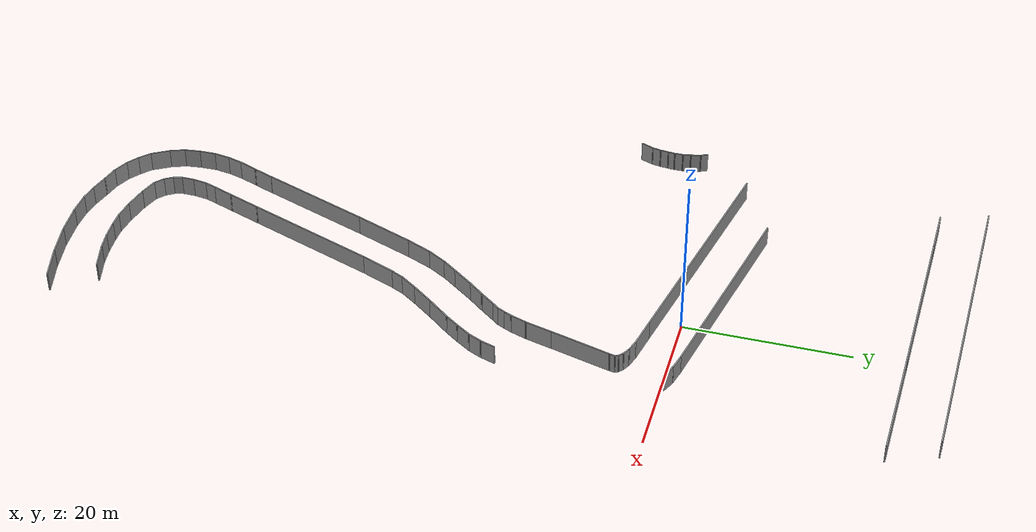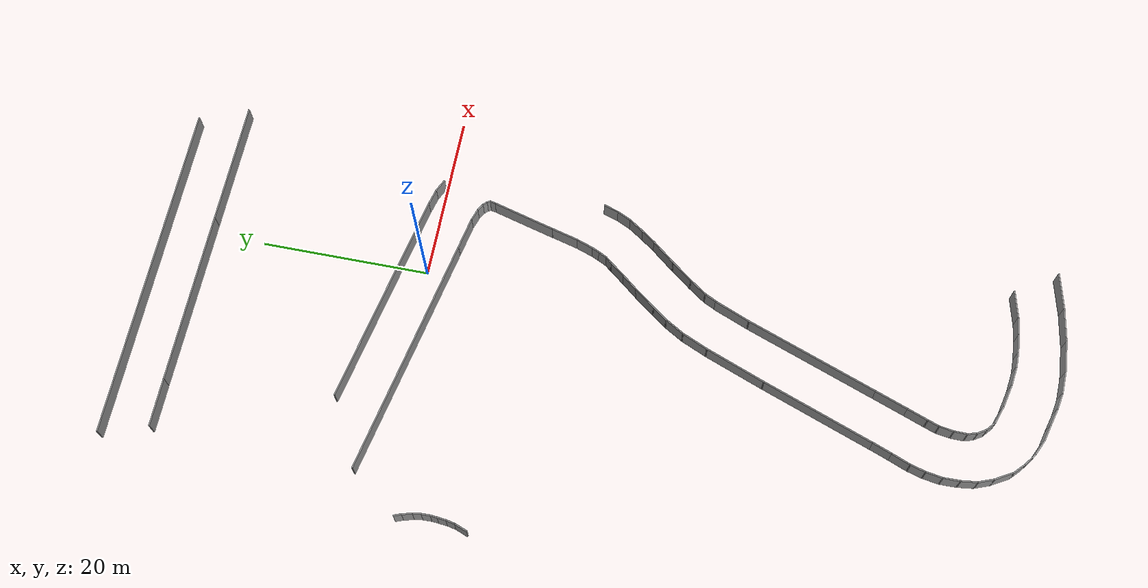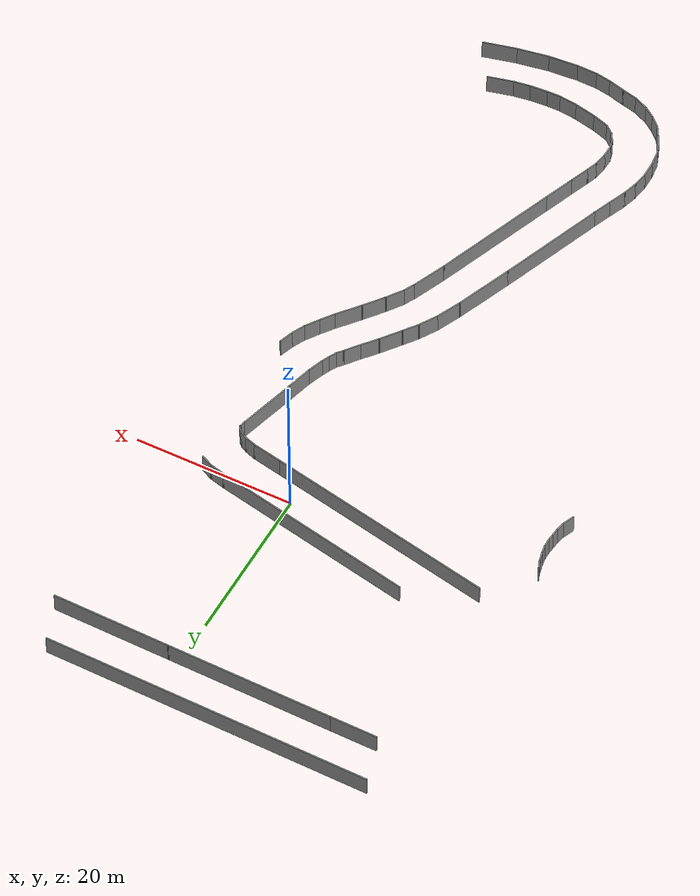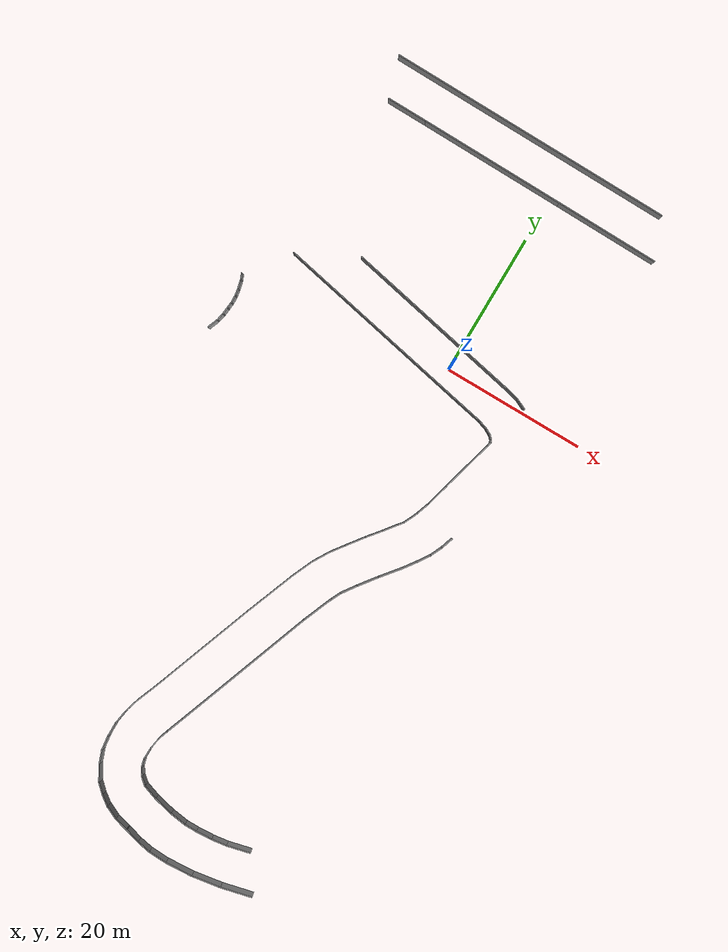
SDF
<sdf version="1.6">
 <model name="pista_l">
  <pose>-4.26084 -21.2973 0 0 -0 0</pose>
  <link name="Wall_146">
   <collision name="Wall_146_Collision">
    <geometry><box><size>3.40806 0.15 2.5</size></box></geometry>
    <pose>0 0 1.25 0 -0 0</pose>
   </collision>
   <visual name="Wall_146_Visual">
    <pose>0 0 1.25 0 -0 0</pose>
    <geometry><box><size>3.40806 0.15 2.5</size></box></geometry>
    <material>
     <script><uri>file://media/materials/scripts/gazebo.material</uri><name>Gazebo/Grey</name></script>
     <ambient>1 1 1 1</ambient>
    </material>
    <meta><layer>0</layer></meta>
   </visual>
   <pose>12.7281 -47.3352 0 0 0 -2.90255</pose>
  </link>
  <link name="Wall_147">
   <collision name="Wall_147_Collision">
    <geometry><box><size>2.27169 0.15 2.5</size></box></geometry>
    <pose>0 0 1.25 0 -0 0</pose>
   </collision>
   <visual name="Wall_147_Visual">
    <pose>0 0 1.25 0 -0 0</pose>
    <geometry><box><size>2.27169 0.15 2.5</size></box></geometry>
    <material>
     <script><uri>file://media/materials/scripts/gazebo.material</uri><name>Gazebo/Grey</name></script>
     <ambient>1 1 1 1</ambient>
    </material>
    <meta><layer>0</layer></meta>
   </visual>
   <pose>10.0947 -47.8672 0 0 0 -3.00324</pose>
  </link>
  <link name="Wall_148">
   <collision name="Wall_148_Collision">
    <geometry><box><size>2.41493 0.15 2.5</size></box></geometry>
    <pose>0 0 1.25 0 -0 0</pose>
   </collision>
   <visual name="Wall_148_Visual">
    <pose>0 0 1.25 0 -0 0</pose>
    <geometry><box><size>2.41493 0.15 2.5</size></box></geometry>
    <material>
     <script><uri>file://media/materials/scripts/gazebo.material</uri><name>Gazebo/Grey</name></script>
     <ambient>1 1 1 1</ambient>
    </material>
    <meta><layer>0</layer></meta>
   </visual>
   <pose>7.91347 -48.08 0 0 0 -3.08284</pose>
  </link>
  <link name="Wall_149">
   <collision name="Wall_149_Collision">
    <geometry><box><size>1.90561 0.15 2.5</size></box></geometry>
    <pose>0 0 1.25 0 -0 0</pose>
   </collision>
   <visual name="Wall_149_Visual">
    <pose>0 0 1.25 0 -0 0</pose>
    <geometry><box><size>1.90561 0.15 2.5</size></box></geometry>
    <material>
     <script><uri>file://media/materials/scripts/gazebo.material</uri><name>Gazebo/Grey</name></script>
     <ambient>1 1 1 1</ambient>
    </material>
    <meta><layer>0</layer></meta>
   </visual>
   <pose>5.90515 -48.1465 0 0 -0 3.14159</pose>
  </link>
  <link name="Wall_150">
   <collision name="Wall_150_Collision">
    <geometry><box><size>2.48613 0.15 2.5</size></box></geometry>
    <pose>0 0 1.25 0 -0 0</pose>
   </collision>
   <visual name="Wall_150_Visual">
    <pose>0 0 1.25 0 -0 0</pose>
    <geometry><box><size>2.48613 0.15 2.5</size></box></geometry>
    <material>
     <script><uri>file://media/materials/scripts/gazebo.material</uri><name>Gazebo/Grey</name></script>
     <ambient>1 1 1 1</ambient>
    </material>
    <meta><layer>0</layer></meta>
   </visual>
   <pose>3.87024 -47.9869 0 0 -0 3.00453</pose>
  </link>
  <link name="Wall_151">
   <collision name="Wall_151_Collision">
    <geometry><box><size>2.96321 0.15 2.5</size></box></geometry>
    <pose>0 0 1.25 0 -0 0</pose>
   </collision>
   <visual name="Wall_151_Visual">
    <pose>0 0 1.25 0 -0 0</pose>
    <geometry><box><size>2.96321 0.15 2.5</size></box></geometry>
    <material>
     <script><uri>file://media/materials/scripts/gazebo.material</uri><name>Gazebo/Grey</name></script>
     <ambient>1 1 1 1</ambient>
    </material>
    <meta><layer>0</layer></meta>
   </visual>
   <pose>1.34322 -47.5081 0 0 -0 2.91267</pose>
  </link>
  <link name="Wall_152">
   <collision name="Wall_152_Collision">
    <geometry><box><size>2.3456 0.15 2.5</size></box></geometry>
    <pose>0 0 1.25 0 -0 0</pose>
   </collision>
   <visual name="Wall_152_Visual">
    <pose>0 0 1.25 0 -0 0</pose>
    <geometry><box><size>2.3456 0.15 2.5</size></box></geometry>
    <material>
     <script><uri>file://media/materials/scripts/gazebo.material</uri><name>Gazebo/Grey</name></script>
     <ambient>1 1 1 1</ambient>
    </material>
    <meta><layer>0</layer></meta>
   </visual>
   <pose>-1.0641 -46.8297 0 0 -0 2.80835</pose>
  </link>
  <link name="Wall_153">
   <collision name="Wall_153_Collision">
    <geometry><box><size>1.48876 0.15 2.5</size></box></geometry>
    <pose>0 0 1.25 0 -0 0</pose>
   </collision>
   <visual name="Wall_153_Visual">
    <pose>0 0 1.25 0 -0 0</pose>
    <geometry><box><size>1.48876 0.15 2.5</size></box></geometry>
    <material>
     <script><uri>file://media/materials/scripts/gazebo.material</uri><name>Gazebo/Grey</name></script>
     <ambient>1 1 1 1</ambient>
    </material>
    <meta><layer>0</layer></meta>
   </visual>
   <pose>-2.60691 -46.0317 0 0 -0 2.4265</pose>
  </link>
  <link name="Wall_154">
   <collision name="Wall_154_Collision">
    <geometry><box><size>1.30886 0.15 2.5</size></box></geometry>
    <pose>0 0 1.25 0 -0 0</pose>
   </collision>
   <visual name="Wall_154_Visual">
    <pose>0 0 1.25 0 -0 0</pose>
    <geometry><box><size>1.30886 0.15 2.5</size></box></geometry>
    <material>
     <script><uri>file://media/materials/scripts/gazebo.material</uri><name>Gazebo/Grey</name></script>
     <ambient>1 1 1 1</ambient>
    </material>
    <meta><layer>0</layer></meta>
   </visual>
   <pose>-3.41822 -45.1007 0 0 -0 2.12696</pose>
  </link>
  <link name="Wall_155">
   <collision name="Wall_155_Collision">
    <geometry><box><size>1.27918 0.15 2.5</size></box></geometry>
    <pose>0 0 1.25 0 -0 0</pose>
   </collision>
   <visual name="Wall_155_Visual">
    <pose>0 0 1.25 0 -0 0</pose>
    <geometry><box><size>1.27918 0.15 2.5</size></box></geometry>
    <material>
     <script><uri>file://media/materials/scripts/gazebo.material</uri><name>Gazebo/Grey</name></script>
     <ambient>1 1 1 1</ambient>
    </material>
    <meta><layer>0</layer></meta>
   </visual>
   <pose>-3.87042 -44.0633 0 0 -0 1.83292</pose>
  </link>
  <link name="Wall_156">
   <collision name="Wall_156_Collision">
    <geometry><box><size>1.69304 0.15 2.5</size></box></geometry>
    <pose>0 0 1.25 0 -0 0</pose>
   </collision>
   <visual name="Wall_156_Visual">
    <pose>0 0 1.25 0 -0 0</pose>
    <geometry><box><size>1.69304 0.15 2.5</size></box></geometry>
    <material>
     <script><uri>file://media/materials/scripts/gazebo.material</uri><name>Gazebo/Grey</name></script>
     <ambient>1 1 1 1</ambient>
    </material>
    <meta><layer>0</layer></meta>
   </visual>
   <pose>-4.00342 -42.7466 0 0 -0 1.55356</pose>
  </link>
  <link name="Wall_157">
   <collision name="Wall_157_Collision">
    <geometry><box><size>1.87307 0.15 2.5</size></box></geometry>
    <pose>0 0 1.25 0 -0 0</pose>
   </collision>
   <visual name="Wall_157_Visual">
    <pose>0 0 1.25 0 -0 0</pose>
    <geometry><box><size>1.87307 0.15 2.5</size></box></geometry>
    <material>
     <script><uri>file://media/materials/scripts/gazebo.material</uri><name>Gazebo/Grey</name></script>
     <ambient>1 1 1 1</ambient>
    </material>
    <meta><layer>0</layer></meta>
   </visual>
   <pose>-3.85712 -41.124 0 0 -0 1.4158</pose>
  </link>
  <link name="Wall_158">
   <collision name="Wall_158_Collision">
    <geometry><box><size>1.58863 0.15 2.5</size></box></geometry>
    <pose>0 0 1.25 0 -0 0</pose>
   </collision>
   <visual name="Wall_158_Visual">
    <pose>0 0 1.25 0 -0 0</pose>
    <geometry><box><size>1.58863 0.15 2.5</size></box></geometry>
    <material>
     <script><uri>file://media/materials/scripts/gazebo.material</uri><name>Gazebo/Grey</name></script>
     <ambient>1 1 1 1</ambient>
    </material>
    <meta><layer>0</layer></meta>
   </visual>
   <pose>-3.48472 -39.5945 0 0 -0 1.2315</pose>
  </link>
  <link name="Wall_159">
   <collision name="Wall_159_Collision">
    <geometry><box><size>2.75899 0.15 2.5</size></box></geometry>
    <pose>0 0 1.25 0 -0 0</pose>
   </collision>
   <visual name="Wall_159_Visual">
    <pose>0 0 1.25 0 -0 0</pose>
    <geometry><box><size>2.75899 0.15 2.5</size></box></geometry>
    <material>
     <script><uri>file://media/materials/scripts/gazebo.material</uri><name>Gazebo/Grey</name></script>
     <ambient>1 1 1 1</ambient>
    </material>
    <meta><layer>0</layer></meta>
   </visual>
   <pose>-2.79311 -37.6926 0 0 -0 1.2168</pose>
  </link>
  <link name="Wall_160">
   <collision name="Wall_160_Collision">
    <geometry><box><size>4.25661 0.15 2.5</size></box></geometry>
    <pose>0 0 1.25 0 -0 0</pose>
   </collision>
   <visual name="Wall_160_Visual">
    <pose>0 0 1.25 0 -0 0</pose>
    <geometry><box><size>4.25661 0.15 2.5</size></box></geometry>
    <material>
     <script><uri>file://media/materials/scripts/gazebo.material</uri><name>Gazebo/Grey</name></script>
     <ambient>1 1 1 1</ambient>
    </material>
    <meta><layer>0</layer></meta>
   </visual>
   <pose>-1.636 -34.5405 0 0 -0 1.22036</pose>
  </link>
  <link name="Wall_175">
   <collision name="Wall_175_Collision">
    <geometry><box><size>4.60821 0.15 2.5</size></box></geometry>
    <pose>0 0 1.25 0 -0 0</pose>
   </collision>
   <visual name="Wall_175_Visual">
    <pose>0 0 1.25 0 -0 0</pose>
    <geometry><box><size>4.60821 0.15 2.5</size></box></geometry>
    <material>
     <script><uri>file://media/materials/scripts/gazebo.material</uri><name>Gazebo/Grey</name></script>
     <ambient>1 1 1 1</ambient>
    </material>
    <meta><layer>0</layer></meta>
   </visual>
   <pose>15.3083 -52.3626 0 0 0 -2.90674</pose>
  </link>
  <link name="Wall_177">
   <collision name="Wall_177_Collision">
    <geometry><box><size>4.13826 0.15 2.5</size></box></geometry>
    <pose>0 0 1.25 0 -0 0</pose>
   </collision>
   <visual name="Wall_177_Visual">
    <pose>0 0 1.25 0 -0 0</pose>
    <geometry><box><size>4.13826 0.15 2.5</size></box></geometry>
    <material>
     <script><uri>file://media/materials/scripts/gazebo.material</uri><name>Gazebo/Grey</name></script>
     <ambient>1 1 1 1</ambient>
    </material>
    <meta><layer>0</layer></meta>
   </visual>
   <pose>11.2252 -53.1739 0 0 0 -2.98083</pose>
  </link>
  <link name="Wall_178">
   <collision name="Wall_178_Collision">
    <geometry><box><size>3.96136 0.15 2.5</size></box></geometry>
    <pose>0 0 1.25 0 -0 0</pose>
   </collision>
   <visual name="Wall_178_Visual">
    <pose>0 0 1.25 0 -0 0</pose>
    <geometry><box><size>3.96136 0.15 2.5</size></box></geometry>
    <material>
     <script><uri>file://media/materials/scripts/gazebo.material</uri><name>Gazebo/Grey</name></script>
     <ambient>1 1 1 1</ambient>
    </material>
    <meta><layer>0</layer></meta>
   </visual>
   <pose>7.35487 -53.6128 0 0 0 -3.07874</pose>
  </link>
  <link name="Wall_179">
   <collision name="Wall_179_Collision">
    <geometry><box><size>2.75804 0.15 2.5</size></box></geometry>
    <pose>0 0 1.25 0 -0 0</pose>
   </collision>
   <visual name="Wall_179_Visual">
    <pose>0 0 1.25 0 -0 0</pose>
    <geometry><box><size>2.75804 0.15 2.5</size></box></geometry>
    <material>
     <script><uri>file://media/materials/scripts/gazebo.material</uri><name>Gazebo/Grey</name></script>
     <ambient>1 1 1 1</ambient>
    </material>
    <meta><layer>0</layer></meta>
   </visual>
   <pose>4.14954 -53.6793 0 0 -0 3.1008</pose>
  </link>
  <link name="Wall_180">
   <collision name="Wall_180_Collision">
    <geometry><box><size>2.15333 0.15 2.5</size></box></geometry>
    <pose>0 0 1.25 0 -0 0</pose>
   </collision>
   <visual name="Wall_180_Visual">
    <pose>0 0 1.25 0 -0 0</pose>
    <geometry><box><size>2.15333 0.15 2.5</size></box></geometry>
    <material>
     <script><uri>file://media/materials/scripts/gazebo.material</uri><name>Gazebo/Grey</name></script>
     <ambient>1 1 1 1</ambient>
    </material>
    <meta><layer>0</layer></meta>
   </visual>
   <pose>1.86193 -53.4399 0 0 -0 2.95461</pose>
  </link>
  <link name="Wall_181">
   <collision name="Wall_181_Collision">
    <geometry><box><size>2.33138 0.15 2.5</size></box></geometry>
    <pose>0 0 1.25 0 -0 0</pose>
   </collision>
   <visual name="Wall_181_Visual">
    <pose>0 0 1.25 0 -0 0</pose>
    <geometry><box><size>2.33138 0.15 2.5</size></box></geometry>
    <material>
     <script><uri>file://media/materials/scripts/gazebo.material</uri><name>Gazebo/Grey</name></script>
     <ambient>1 1 1 1</ambient>
    </material>
    <meta><layer>0</layer></meta>
   </visual>
   <pose>-0.17299 -52.9611 0 0 -0 2.86999</pose>
  </link>
  <link name="Wall_182">
   <collision name="Wall_182_Collision">
    <geometry><box><size>2.15651 0.15 2.5</size></box></geometry>
    <pose>0 0 1.25 0 -0 0</pose>
   </collision>
   <visual name="Wall_182_Visual">
    <pose>0 0 1.25 0 -0 0</pose>
    <geometry><box><size>2.15651 0.15 2.5</size></box></geometry>
    <material>
     <script><uri>file://media/materials/scripts/gazebo.material</uri><name>Gazebo/Grey</name></script>
     <ambient>1 1 1 1</ambient>
    </material>
    <meta><layer>0</layer></meta>
   </visual>
   <pose>-2.19461 -52.4158 0 0 -0 2.88697</pose>
  </link>
  <link name="Wall_183">
   <collision name="Wall_183_Collision">
    <geometry><box><size>2.14909 0.15 2.5</size></box></geometry>
    <pose>0 0 1.25 0 -0 0</pose>
   </collision>
   <visual name="Wall_183_Visual">
    <pose>0 0 1.25 0 -0 0</pose>
    <geometry><box><size>2.14909 0.15 2.5</size></box></geometry>
    <material>
     <script><uri>file://media/materials/scripts/gazebo.material</uri><name>Gazebo/Grey</name></script>
     <ambient>1 1 1 1</ambient>
    </material>
    <meta><layer>0</layer></meta>
   </visual>
   <pose>-4.06992 -51.7375 0 0 -0 2.70175</pose>
  </link>
  <link name="Wall_184">
   <collision name="Wall_184_Collision">
    <geometry><box><size>1.80457 0.15 2.5</size></box></geometry>
    <pose>0 0 1.25 0 -0 0</pose>
   </collision>
   <visual name="Wall_184_Visual">
    <pose>0 0 1.25 0 -0 0</pose>
    <geometry><box><size>1.80457 0.15 2.5</size></box></geometry>
    <material>
     <script><uri>file://media/materials/scripts/gazebo.material</uri><name>Gazebo/Grey</name></script>
     <ambient>1 1 1 1</ambient>
    </material>
    <meta><layer>0</layer></meta>
   </visual>
   <pose>-5.63933 -50.8198 0 0 -0 2.50452</pose>
  </link>
  <link name="Wall_185">
   <collision name="Wall_185_Collision">
    <geometry><box><size>1.84324 0.15 2.5</size></box></geometry>
    <pose>0 0 1.25 0 -0 0</pose>
   </collision>
   <visual name="Wall_185_Visual">
    <pose>0 0 1.25 0 -0 0</pose>
    <geometry><box><size>1.84324 0.15 2.5</size></box></geometry>
    <material>
     <script><uri>file://media/materials/scripts/gazebo.material</uri><name>Gazebo/Grey</name></script>
     <ambient>1 1 1 1</ambient>
    </material>
    <meta><layer>0</layer></meta>
   </visual>
   <pose>-6.91614 -49.7425 0 0 -0 2.37841</pose>
  </link>
  <link name="Wall_186">
   <collision name="Wall_186_Collision">
    <geometry><box><size>2.54535 0.15 2.5</size></box></geometry>
    <pose>0 0 1.25 0 -0 0</pose>
   </collision>
   <visual name="Wall_186_Visual">
    <pose>0 0 1.25 0 -0 0</pose>
    <geometry><box><size>2.54535 0.15 2.5</size></box></geometry>
    <material>
     <script><uri>file://media/materials/scripts/gazebo.material</uri><name>Gazebo/Grey</name></script>
     <ambient>1 1 1 1</ambient>
    </material>
    <meta><layer>0</layer></meta>
   </visual>
   <pose>-8.12645 -48.1199 0 0 -0 2.09408</pose>
  </link>
  <link name="Wall_187">
   <collision name="Wall_187_Collision">
    <geometry><box><size>2.02734 0.15 2.5</size></box></geometry>
    <pose>0 0 1.25 0 -0 0</pose>
   </collision>
   <visual name="Wall_187_Visual">
    <pose>0 0 1.25 0 -0 0</pose>
    <geometry><box><size>2.02734 0.15 2.5</size></box></geometry>
    <material>
     <script><uri>file://media/materials/scripts/gazebo.material</uri><name>Gazebo/Grey</name></script>
     <ambient>1 1 1 1</ambient>
    </material>
    <meta><layer>0</layer></meta>
   </visual>
   <pose>-9.05746 -46.2046 0 0 -0 1.93288</pose>
  </link>
  <link name="Wall_188">
   <collision name="Wall_188_Collision">
    <geometry><box><size>2.10652 0.15 2.5</size></box></geometry>
    <pose>0 0 1.25 0 -0 0</pose>
   </collision>
   <visual name="Wall_188_Visual">
    <pose>0 0 1.25 0 -0 0</pose>
    <geometry><box><size>2.10652 0.15 2.5</size></box></geometry>
    <material>
     <script><uri>file://media/materials/scripts/gazebo.material</uri><name>Gazebo/Grey</name></script>
     <ambient>1 1 1 1</ambient>
    </material>
    <meta><layer>0</layer></meta>
   </visual>
   <pose>-9.50966 -44.3559 0 0 -0 1.69346</pose>
  </link>
  <link name="Wall_189">
   <collision name="Wall_189_Collision">
    <geometry><box><size>2.14519 0.15 2.5</size></box></geometry>
    <pose>0 0 1.25 0 -0 0</pose>
   </collision>
   <visual name="Wall_189_Visual">
    <pose>0 0 1.25 0 -0 0</pose>
    <geometry><box><size>2.14519 0.15 2.5</size></box></geometry>
    <material>
     <script><uri>file://media/materials/scripts/gazebo.material</uri><name>Gazebo/Grey</name></script>
     <ambient>1 1 1 1</ambient>
    </material>
    <meta><layer>0</layer></meta>
   </visual>
   <pose>-9.64266 -42.3875 0 0 -0 1.58413</pose>
  </link>
  <link name="Wall_190">
   <collision name="Wall_190_Collision">
    <geometry><box><size>2.14413 0.15 2.5</size></box></geometry>
    <pose>0 0 1.25 0 -0 0</pose>
   </collision>
   <visual name="Wall_190_Visual">
    <pose>0 0 1.25 0 -0 0</pose>
    <geometry><box><size>2.14413 0.15 2.5</size></box></geometry>
    <material>
     <script><uri>file://media/materials/scripts/gazebo.material</uri><name>Gazebo/Grey</name></script>
     <ambient>1 1 1 1</ambient>
    </material>
    <meta><layer>0</layer></meta>
   </visual>
   <pose>-9.49636 -40.4058 0 0 -0 1.41003</pose>
  </link>
  <link name="Wall_191">
   <collision name="Wall_191_Collision">
    <geometry><box><size>2.00249 0.15 2.5</size></box></geometry>
    <pose>0 0 1.25 0 -0 0</pose>
   </collision>
   <visual name="Wall_191_Visual">
    <pose>0 0 1.25 0 -0 0</pose>
    <geometry><box><size>2.00249 0.15 2.5</size></box></geometry>
    <material>
     <script><uri>file://media/materials/scripts/gazebo.material</uri><name>Gazebo/Grey</name></script>
     <ambient>1 1 1 1</ambient>
    </material>
    <meta><layer>0</layer></meta>
   </visual>
   <pose>-9.08406 -38.5305 0 0 -0 1.29447</pose>
  </link>
  <link name="Wall_192">
   <collision name="Wall_192_Collision">
    <geometry><box><size>2.55066 0.15 2.5</size></box></geometry>
    <pose>0 0 1.25 0 -0 0</pose>
   </collision>
   <visual name="Wall_192_Visual">
    <pose>0 0 1.25 0 -0 0</pose>
    <geometry><box><size>2.55066 0.15 2.5</size></box></geometry>
    <material>
     <script><uri>file://media/materials/scripts/gazebo.material</uri><name>Gazebo/Grey</name></script>
     <ambient>1 1 1 1</ambient>
    </material>
    <meta><layer>0</layer></meta>
   </visual>
   <pose>-8.39245 -36.5222 0 0 -0 1.19646</pose>
  </link>
  <link name="Wall_193">
   <collision name="Wall_193_Collision">
    <geometry><box><size>2.68429 0.15 2.5</size></box></geometry>
    <pose>0 0 1.25 0 -0 0</pose>
   </collision>
   <visual name="Wall_193_Visual">
    <pose>0 0 1.25 0 -0 0</pose>
    <geometry><box><size>2.68429 0.15 2.5</size></box></geometry>
    <material>
     <script><uri>file://media/materials/scripts/gazebo.material</uri><name>Gazebo/Grey</name></script>
     <ambient>1 1 1 1</ambient>
    </material>
    <meta><layer>0</layer></meta>
   </visual>
   <pose>-7.50135 -34.2213 0 0 -0 1.20588</pose>
  </link>
  <link name="Wall_195">
   <collision name="Wall_195_Collision">
    <geometry><box><size>14.1356 0.15 2.5</size></box></geometry>
    <pose>0 0 1.25 0 -0 0</pose>
   </collision>
   <visual name="Wall_195_Visual">
    <pose>0 0 1.25 0 -0 0</pose>
    <geometry><box><size>14.1356 0.15 2.5</size></box></geometry>
    <material>
     <script><uri>file://media/materials/scripts/gazebo.material</uri><name>Gazebo/Grey</name></script>
     <ambient>1 1 1 1</ambient>
    </material>
    <meta><layer>0</layer></meta>
   </visual>
   <pose>-4.68173 -26.4939 0 0 -0 1.22138</pose>
  </link>
  <link name="Wall_196">
   <collision name="Wall_196_Collision">
    <geometry><box><size>7.69368 0.15 2.5</size></box></geometry>
    <pose>0 0 1.25 0 -0 0</pose>
   </collision>
   <visual name="Wall_196_Visual">
    <pose>0 0 1.25 0 -0 0</pose>
    <geometry><box><size>7.69368 0.15 2.5</size></box></geometry>
    <material>
     <script><uri>file://media/materials/scripts/gazebo.material</uri><name>Gazebo/Grey</name></script>
     <ambient>1 1 1 1</ambient>
    </material>
    <meta><layer>0</layer></meta>
   </visual>
   <pose>-0.944396 -16.3991 0 0 -0 1.20666</pose>
  </link>
  <link name="Wall_198">
   <collision name="Wall_198_Collision">
    <geometry><box><size>16.6764 0.15 2.5</size></box></geometry>
    <pose>0 0 1.25 0 -0 0</pose>
   </collision>
   <visual name="Wall_198_Visual">
    <pose>0 0 1.25 0 -0 0</pose>
    <geometry><box><size>16.6764 0.15 2.5</size></box></geometry>
    <material>
     <script><uri>file://media/materials/scripts/gazebo.material</uri><name>Gazebo/Grey</name></script>
     <ambient>1 1 1 1</ambient>
    </material>
    <meta><layer>0</layer></meta>
   </visual>
   <pose>1.88853 -24.8447 0 0 -0 1.22257</pose>
  </link>
  <link name="Wall_199">
   <collision name="Wall_199_Collision">
    <geometry><box><size>4.62524 0.15 2.5</size></box></geometry>
    <pose>0 0 1.25 0 -0 0</pose>
   </collision>
   <visual name="Wall_199_Visual">
    <pose>0 0 1.25 0 -0 0</pose>
    <geometry><box><size>4.62524 0.15 2.5</size></box></geometry>
    <material>
     <script><uri>file://media/materials/scripts/gazebo.material</uri><name>Gazebo/Grey</name></script>
     <ambient>1 1 1 1</ambient>
    </material>
    <meta><layer>0</layer></meta>
   </visual>
   <pose>5.54605 -15.0026 0 0 -0 1.18698</pose>
  </link>
  <link name="Wall_201">
   <collision name="Wall_201_Collision">
    <geometry><box><size>3.46127 0.15 2.5</size></box></geometry>
    <pose>0 0 1.25 0 -0 0</pose>
   </collision>
   <visual name="Wall_201_Visual">
    <pose>0 0 1.25 0 -0 0</pose>
    <geometry><box><size>3.46127 0.15 2.5</size></box></geometry>
    <material>
     <script><uri>file://media/materials/scripts/gazebo.material</uri><name>Gazebo/Grey</name></script>
     <ambient>1 1 1 1</ambient>
    </material>
    <meta><layer>0</layer></meta>
   </visual>
   <pose>1.06392 -11.3584 0 0 -0 1.15747</pose>
  </link>
  <link name="Wall_202">
   <collision name="Wall_202_Collision">
    <geometry><box><size>2.71385 0.15 2.5</size></box></geometry>
    <pose>0 0 1.25 0 -0 0</pose>
   </collision>
   <visual name="Wall_202_Visual">
    <pose>0 0 1.25 0 -0 0</pose>
    <geometry><box><size>2.71385 0.15 2.5</size></box></geometry>
    <material>
     <script><uri>file://media/materials/scripts/gazebo.material</uri><name>Gazebo/Grey</name></script>
     <ambient>1 1 1 1</ambient>
    </material>
    <meta><layer>0</layer></meta>
   </visual>
   <pose>2.38063 -8.73826 0 0 -0 1.03749</pose>
  </link>
  <link name="Wall_203">
   <collision name="Wall_203_Collision">
    <geometry><box><size>2.26216 0.15 2.5</size></box></geometry>
    <pose>0 0 1.25 0 -0 0</pose>
   </collision>
   <visual name="Wall_203_Visual">
    <pose>0 0 1.25 0 -0 0</pose>
    <geometry><box><size>2.26216 0.15 2.5</size></box></geometry>
    <material>
     <script><uri>file://media/materials/scripts/gazebo.material</uri><name>Gazebo/Grey</name></script>
     <ambient>1 1 1 1</ambient>
    </material>
    <meta><layer>0</layer></meta>
   </visual>
   <pose>3.65744 -6.78315 0 0 -0 0.93737</pose>
  </link>
  <link name="Wall_204">
   <collision name="Wall_204_Collision">
    <geometry><box><size>3.17179 0.15 2.5</size></box></geometry>
    <pose>0 0 1.25 0 -0 0</pose>
   </collision>
   <visual name="Wall_204_Visual">
    <pose>0 0 1.25 0 -0 0</pose>
    <geometry><box><size>3.17179 0.15 2.5</size></box></geometry>
    <material>
     <script><uri>file://media/materials/scripts/gazebo.material</uri><name>Gazebo/Grey</name></script>
     <ambient>1 1 1 1</ambient>
    </material>
    <meta><layer>0</layer></meta>
   </visual>
   <pose>5.18695 -4.72163 0 0 -0 0.929056</pose>
  </link>
  <link name="Wall_205">
   <collision name="Wall_205_Collision">
    <geometry><box><size>2.47641 0.15 2.5</size></box></geometry>
    <pose>0 0 1.25 0 -0 0</pose>
   </collision>
   <visual name="Wall_205_Visual">
    <pose>0 0 1.25 0 -0 0</pose>
    <geometry><box><size>2.47641 0.15 2.5</size></box></geometry>
    <material>
     <script><uri>file://media/materials/scripts/gazebo.material</uri><name>Gazebo/Grey</name></script>
     <ambient>1 1 1 1</ambient>
    </material>
    <meta><layer>0</layer></meta>
   </visual>
   <pose>6.82286 -2.60692 0 0 -0 0.890698</pose>
  </link>
  <link name="Wall_206">
   <collision name="Wall_206_Collision">
    <geometry><box><size>2.29408 0.15 2.5</size></box></geometry>
    <pose>0 0 1.25 0 -0 0</pose>
   </collision>
   <visual name="Wall_206_Visual">
    <pose>0 0 1.25 0 -0 0</pose>
    <geometry><box><size>2.29408 0.15 2.5</size></box></geometry>
    <material>
     <script><uri>file://media/materials/scripts/gazebo.material</uri><name>Gazebo/Grey</name></script>
     <ambient>1 1 1 1</ambient>
    </material>
    <meta><layer>0</layer></meta>
   </visual>
   <pose>8.20607 -0.851305 0 0 -0 0.91737</pose>
  </link>
  <link name="Wall_207">
   <collision name="Wall_207_Collision">
    <geometry><box><size>1.07644 0.15 2.5</size></box></geometry>
    <pose>0 0 1.25 0 -0 0</pose>
   </collision>
   <visual name="Wall_207_Visual">
    <pose>0 0 1.25 0 -0 0</pose>
    <geometry><box><size>1.07644 0.15 2.5</size></box></geometry>
    <material>
     <script><uri>file://media/materials/scripts/gazebo.material</uri><name>Gazebo/Grey</name></script>
     <ambient>1 1 1 1</ambient>
    </material>
    <meta><layer>0</layer></meta>
   </visual>
   <pose>9.15038 0.359005 0 0 -0 0.887087</pose>
  </link>
  <link name="Wall_208">
   <collision name="Wall_208_Collision">
    <geometry><box><size>1.22064 0.15 2.5</size></box></geometry>
    <pose>0 0 1.25 0 -0 0</pose>
   </collision>
   <visual name="Wall_208_Visual">
    <pose>0 0 1.25 0 -0 0</pose>
    <geometry><box><size>1.22064 0.15 2.5</size></box></geometry>
    <material>
     <script><uri>file://media/materials/scripts/gazebo.material</uri><name>Gazebo/Grey</name></script>
     <ambient>1 1 1 1</ambient>
    </material>
    <meta><layer>0</layer></meta>
   </visual>
   <pose>9.68238 1.19691 0 0 -0 1.10715</pose>
  </link>
  <link name="Wall_209">
   <collision name="Wall_209_Collision">
    <geometry><box><size>1.13851 0.15 2.5</size></box></geometry>
    <pose>0 0 1.25 0 -0 0</pose>
   </collision>
   <visual name="Wall_209_Visual">
    <pose>0 0 1.25 0 -0 0</pose>
    <geometry><box><size>1.13851 0.15 2.5</size></box></geometry>
    <material>
     <script><uri>file://media/materials/scripts/gazebo.material</uri><name>Gazebo/Grey</name></script>
     <ambient>1 1 1 1</ambient>
    </material>
    <meta><layer>0</layer></meta>
   </visual>
   <pose>10.1213 2.12792 0 0 -0 1.1553</pose>
  </link>
  <link name="Wall_210">
   <collision name="Wall_210_Collision">
    <geometry><box><size>2.17738 0.15 2.5</size></box></geometry>
    <pose>0 0 1.25 0 -0 0</pose>
   </collision>
   <visual name="Wall_210_Visual">
    <pose>0 0 1.25 0 -0 0</pose>
    <geometry><box><size>2.17738 0.15 2.5</size></box></geometry>
    <material>
     <script><uri>file://media/materials/scripts/gazebo.material</uri><name>Gazebo/Grey</name></script>
     <ambient>1 1 1 1</ambient>
    </material>
    <meta><layer>0</layer></meta>
   </visual>
   <pose>10.6533 3.53773 0 0 -0 1.2366</pose>
  </link>
  <link name="Wall_211">
   <collision name="Wall_211_Collision">
    <geometry><box><size>3.42107 0.15 2.5</size></box></geometry>
    <pose>0 0 1.25 0 -0 0</pose>
   </collision>
   <visual name="Wall_211_Visual">
    <pose>0 0 1.25 0 -0 0</pose>
    <geometry><box><size>3.42107 0.15 2.5</size></box></geometry>
    <material>
     <script><uri>file://media/materials/scripts/gazebo.material</uri><name>Gazebo/Grey</name></script>
     <ambient>1 1 1 1</ambient>
    </material>
    <meta><layer>0</layer></meta>
   </visual>
   <pose>11.3981 6.07805 0 0 -0 1.31596</pose>
  </link>
  <link name="Wall_213">
   <collision name="Wall_213_Collision">
    <geometry><box><size>1.68477 0.15 2.5</size></box></geometry>
    <pose>0 0 1.25 0 -0 0</pose>
   </collision>
   <visual name="Wall_213_Visual">
    <pose>0 0 1.25 0 -0 0</pose>
    <geometry><box><size>1.68477 0.15 2.5</size></box></geometry>
    <material>
     <script><uri>file://media/materials/scripts/gazebo.material</uri><name>Gazebo/Grey</name></script>
     <ambient>1 1 1 1</ambient>
    </material>
    <meta><layer>0</layer></meta>
   </visual>
   <pose>6.74306 -12.2362 0 0 -0 1.12265</pose>
  </link>
  <link name="Wall_214">
   <collision name="Wall_214_Collision">
    <geometry><box><size>2.51876 0.15 2.5</size></box></geometry>
    <pose>0 0 1.25 0 -0 0</pose>
   </collision>
   <visual name="Wall_214_Visual">
    <pose>0 0 1.25 0 -0 0</pose>
    <geometry><box><size>2.51876 0.15 2.5</size></box></geometry>
    <material>
     <script><uri>file://media/materials/scripts/gazebo.material</uri><name>Gazebo/Grey</name></script>
     <ambient>1 1 1 1</ambient>
    </material>
    <meta><layer>0</layer></meta>
   </visual>
   <pose>7.75387 -10.5737 0 0 -0 0.96099</pose>
  </link>
  <link name="Wall_215">
   <collision name="Wall_215_Collision">
    <geometry><box><size>3.18778 0.15 2.5</size></box></geometry>
    <pose>0 0 1.25 0 -0 0</pose>
   </collision>
   <visual name="Wall_215_Visual">
    <pose>0 0 1.25 0 -0 0</pose>
    <geometry><box><size>3.18778 0.15 2.5</size></box></geometry>
    <material>
     <script><uri>file://media/materials/scripts/gazebo.material</uri><name>Gazebo/Grey</name></script>
     <ambient>1 1 1 1</ambient>
    </material>
    <meta><layer>0</layer></meta>
   </visual>
   <pose>9.34988 -8.39246 0 0 -0 0.922041</pose>
  </link>
  <link name="Wall_216">
   <collision name="Wall_216_Collision">
    <geometry><box><size>3.59388 0.15 2.5</size></box></geometry>
    <pose>0 0 1.25 0 -0 0</pose>
   </collision>
   <visual name="Wall_216_Visual">
    <pose>0 0 1.25 0 -0 0</pose>
    <geometry><box><size>3.59388 0.15 2.5</size></box></geometry>
    <material>
     <script><uri>file://media/materials/scripts/gazebo.material</uri><name>Gazebo/Grey</name></script>
     <ambient>1 1 1 1</ambient>
    </material>
    <meta><layer>0</layer></meta>
   </visual>
   <pose>11.3449 -5.83884 0 0 -0 0.894849</pose>
  </link>
  <link name="Wall_217">
   <collision name="Wall_217_Collision">
    <geometry><box><size>2.11356 0.15 2.5</size></box></geometry>
    <pose>0 0 1.25 0 -0 0</pose>
   </collision>
   <visual name="Wall_217_Visual">
    <pose>0 0 1.25 0 -0 0</pose>
    <geometry><box><size>2.11356 0.15 2.5</size></box></geometry>
    <material>
     <script><uri>file://media/materials/scripts/gazebo.material</uri><name>Gazebo/Grey</name></script>
     <ambient>1 1 1 1</ambient>
    </material>
    <meta><layer>0</layer></meta>
   </visual>
   <pose>12.9941 -3.69753 0 0 -0 0.948972</pose>
  </link>
  <link name="Wall_218">
   <collision name="Wall_218_Collision">
    <geometry><box><size>2.22311 0.15 2.5</size></box></geometry>
    <pose>0 0 1.25 0 -0 0</pose>
   </collision>
   <visual name="Wall_218_Visual">
    <pose>0 0 1.25 0 -0 0</pose>
    <geometry><box><size>2.22311 0.15 2.5</size></box></geometry>
    <material>
     <script><uri>file://media/materials/scripts/gazebo.material</uri><name>Gazebo/Grey</name></script>
     <ambient>1 1 1 1</ambient>
    </material>
    <meta><layer>0</layer></meta>
   </visual>
   <pose>14.1379 -2.03501 0 0 -0 0.986352</pose>
  </link>
  <link name="Wall_219">
   <collision name="Wall_219_Collision">
    <geometry><box><size>1.91125 0.15 2.5</size></box></geometry>
    <pose>0 0 1.25 0 -0 0</pose>
   </collision>
   <visual name="Wall_219_Visual">
    <pose>0 0 1.25 0 -0 0</pose>
    <geometry><box><size>1.91125 0.15 2.5</size></box></geometry>
    <material>
     <script><uri>file://media/materials/scripts/gazebo.material</uri><name>Gazebo/Grey</name></script>
     <ambient>1 1 1 1</ambient>
    </material>
    <meta><layer>0</layer></meta>
   </visual>
   <pose>15.0822 -0.372501 0 0 -0 1.13417</pose>
  </link>
  <link name="Wall_220">
   <collision name="Wall_220_Collision">
    <geometry><box><size>1.94172 0.15 2.5</size></box></geometry>
    <pose>0 0 1.25 0 -0 0</pose>
   </collision>
   <visual name="Wall_220_Visual">
    <pose>0 0 1.25 0 -0 0</pose>
    <geometry><box><size>1.94172 0.15 2.5</size></box></geometry>
    <material>
     <script><uri>file://media/materials/scripts/gazebo.material</uri><name>Gazebo/Grey</name></script>
     <ambient>1 1 1 1</ambient>
    </material>
    <meta><layer>0</layer></meta>
   </visual>
   <pose>15.7339 1.27671 0 0 -0 1.25374</pose>
  </link>
  <link name="Wall_234">
   <collision name="Wall_234_Collision">
    <geometry><box><size>1.70878 0.15 2.5</size></box></geometry>
    <pose>0 0 1.25 0 -0 0</pose>
   </collision>
   <visual name="Wall_234_Visual">
    <pose>0 0 1.25 0 -0 0</pose>
    <geometry><box><size>1.70878 0.15 2.5</size></box></geometry>
    <material>
     <script><uri>file://media/materials/scripts/gazebo.material</uri><name>Gazebo/Grey</name></script>
     <ambient>1 1 1 1</ambient>
    </material>
    <meta><layer>0</layer></meta>
   </visual>
   <pose>14.7231 21.985 0 0 -0 2.70084</pose>
  </link>
  <link name="Wall_235">
   <collision name="Wall_235_Collision">
    <geometry><box><size>2.09836 0.15 2.5</size></box></geometry>
    <pose>0 0 1.25 0 -0 0</pose>
   </collision>
   <visual name="Wall_235_Visual">
    <pose>0 0 1.25 0 -0 0</pose>
    <geometry><box><size>2.09836 0.15 2.5</size></box></geometry>
    <material>
     <script><uri>file://media/materials/scripts/gazebo.material</uri><name>Gazebo/Grey</name></script>
     <ambient>1 1 1 1</ambient>
    </material>
    <meta><layer>0</layer></meta>
   </visual>
   <pose>13.0739 22.5569 0 0 -0 2.8933</pose>
  </link>
  <link name="Wall_236">
   <collision name="Wall_236_Collision">
    <geometry><box><size>26.0146 0.15 2.5</size></box></geometry>
    <pose>0 0 1.25 0 -0 0</pose>
   </collision>
   <visual name="Wall_236_Visual">
    <pose>0 0 1.25 0 -0 0</pose>
    <geometry><box><size>26.0146 0.15 2.5</size></box></geometry>
    <material>
     <script><uri>file://media/materials/scripts/gazebo.material</uri><name>Gazebo/Grey</name></script>
     <ambient>1 1 1 1</ambient>
    </material>
    <meta><layer>0</layer></meta>
   </visual>
   <pose>-0.545393 25.3632 0 0 -0 2.94178</pose>
  </link>
  <link name="Wall_238">
   <collision name="Wall_238_Collision">
    <geometry><box><size>7.69269 0.15 2.5</size></box></geometry>
    <pose>0 0 1.25 0 -0 0</pose>
   </collision>
   <visual name="Wall_238_Visual">
    <pose>0 0 1.25 0 -0 0</pose>
    <geometry><box><size>7.69269 0.15 2.5</size></box></geometry>
    <material>
     <script><uri>file://media/materials/scripts/gazebo.material</uri><name>Gazebo/Grey</name></script>
     <ambient>1 1 1 1</ambient>
    </material>
    <meta><layer>0</layer></meta>
   </visual>
   <pose>12.7813 11.3582 0 0 -0 1.31042</pose>
  </link>
  <link name="Wall_239">
   <collision name="Wall_239_Collision">
    <geometry><box><size>0.802112 0.15 2.5</size></box></geometry>
    <pose>0 0 1.25 0 -0 0</pose>
   </collision>
   <visual name="Wall_239_Visual">
    <pose>0 0 1.25 0 -0 0</pose>
    <geometry><box><size>0.802112 0.15 2.5</size></box></geometry>
    <material>
     <script><uri>file://media/materials/scripts/gazebo.material</uri><name>Gazebo/Grey</name></script>
     <ambient>1 1 1 1</ambient>
    </material>
    <meta><layer>0</layer></meta>
   </visual>
   <pose>13.8187 15.3216 0 0 -0 1.3654</pose>
  </link>
  <link name="Wall_240">
   <collision name="Wall_240_Collision">
    <geometry><box><size>0.566359 0.15 2.5</size></box></geometry>
    <pose>0 0 1.25 0 -0 0</pose>
   </collision>
   <visual name="Wall_240_Visual">
    <pose>0 0 1.25 0 -0 0</pose>
    <geometry><box><size>0.566359 0.15 2.5</size></box></geometry>
    <material>
     <script><uri>file://media/materials/scripts/gazebo.material</uri><name>Gazebo/Grey</name></script>
     <ambient>1 1 1 1</ambient>
    </material>
    <meta><layer>0</layer></meta>
   </visual>
   <pose>13.7921 15.827 0 0 -0 2.03444</pose>
  </link>
  <link name="Wall_241">
   <collision name="Wall_241_Collision">
    <geometry><box><size>0.751894 0.15 2.5</size></box></geometry>
    <pose>0 0 1.25 0 -0 0</pose>
   </collision>
   <visual name="Wall_241_Visual">
    <pose>0 0 1.25 0 -0 0</pose>
    <geometry><box><size>0.751894 0.15 2.5</size></box></geometry>
    <material>
     <script><uri>file://media/materials/scripts/gazebo.material</uri><name>Gazebo/Grey</name></script>
     <ambient>1 1 1 1</ambient>
    </material>
    <meta><layer>0</layer></meta>
   </visual>
   <pose>13.4862 16.226 0 0 -0 2.35619</pose>
  </link>
  <link name="Wall_242">
   <collision name="Wall_242_Collision">
    <geometry><box><size>1.09046 0.15 2.5</size></box></geometry>
    <pose>0 0 1.25 0 -0 0</pose>
   </collision>
   <visual name="Wall_242_Visual">
    <pose>0 0 1.25 0 -0 0</pose>
    <geometry><box><size>1.09046 0.15 2.5</size></box></geometry>
    <material>
     <script><uri>file://media/materials/scripts/gazebo.material</uri><name>Gazebo/Grey</name></script>
     <ambient>1 1 1 1</ambient>
    </material>
    <meta><layer>0</layer></meta>
   </visual>
   <pose>12.8611 16.6649 0 0 -0 2.63999</pose>
  </link>
  <link name="Wall_243">
   <collision name="Wall_243_Collision">
    <geometry><box><size>1.57999 0.15 2.5</size></box></geometry>
    <pose>0 0 1.25 0 -0 0</pose>
   </collision>
   <visual name="Wall_243_Visual">
    <pose>0 0 1.25 0 -0 0</pose>
    <geometry><box><size>1.57999 0.15 2.5</size></box></geometry>
    <material>
     <script><uri>file://media/materials/scripts/gazebo.material</uri><name>Gazebo/Grey</name></script>
     <ambient>1 1 1 1</ambient>
    </material>
    <meta><layer>0</layer></meta>
   </visual>
   <pose>11.7705 17.1171 0 0 -0 2.81984</pose>
  </link>
  <link name="Wall_244">
   <collision name="Wall_244_Collision">
    <geometry><box><size>3.97386 0.15 2.5</size></box></geometry>
    <pose>0 0 1.25 0 -0 0</pose>
   </collision>
   <visual name="Wall_244_Visual">
    <pose>0 0 1.25 0 -0 0</pose>
    <geometry><box><size>3.97386 0.15 2.5</size></box></geometry>
    <material>
     <script><uri>file://media/materials/scripts/gazebo.material</uri><name>Gazebo/Grey</name></script>
     <ambient>1 1 1 1</ambient>
    </material>
    <meta><layer>0</layer></meta>
   </visual>
   <pose>9.21688 17.7156 0 0 -0 2.94556</pose>
  </link>
  <link name="Wall_245">
   <collision name="Wall_245_Collision">
    <geometry><box><size>29.2698 0.15 2.5</size></box></geometry>
    <pose>0 0 1.25 0 -0 0</pose>
   </collision>
   <visual name="Wall_245_Visual">
    <pose>0 0 1.25 0 -0 0</pose>
    <geometry><box><size>29.2698 0.15 2.5</size></box></geometry>
    <material>
     <script><uri>file://media/materials/scripts/gazebo.material</uri><name>Gazebo/Grey</name></script>
     <ambient>1 1 1 1</ambient>
    </material>
    <meta><layer>0</layer></meta>
   </visual>
   <pose>-6.92944 20.9742 0 0 -0 2.94205</pose>
  </link>
  <link name="Wall_3">
   <collision name="Wall_3_Collision">
    <geometry><box><size>40.6653 0.15 2.5</size></box></geometry>
    <pose>0 0 1.25 0 -0 0</pose>
   </collision>
   <visual name="Wall_3_Visual">
    <pose>0 0 1.25 0 -0 0</pose>
    <geometry><box><size>40.6653 0.15 2.5</size></box></geometry>
    <material>
     <script><uri>file://media/materials/scripts/gazebo.material</uri><name>Gazebo/Grey</name></script>
     <ambient>1 1 1 1</ambient>
    </material>
    <meta><layer>0</layer></meta>
   </visual>
   <pose>-2.32761 53.0407 0 0 0 -0.011818</pose>
  </link>
  <link name="Wall_313">
   <collision name="Wall_313_Collision">
    <geometry><box><size>1.00948 0.15 2.5</size></box></geometry>
    <pose>0 0 1.25 0 -0 0</pose>
   </collision>
   <visual name="Wall_313_Visual">
    <pose>0 0 1.25 0 -0 0</pose>
    <geometry><box><size>1.00948 0.15 2.5</size></box></geometry>
    <material>
     <script><uri>file://media/materials/scripts/gazebo.material</uri><name>Gazebo/Grey</name></script>
     <ambient>1 1 1 1</ambient>
    </material>
    <meta><layer>0</layer></meta>
   </visual>
   <pose>-25.5363 17.6092 0 0 0 -1.19029</pose>
  </link>
  <link name="Wall_314">
   <collision name="Wall_314_Collision">
    <geometry><box><size>1.38225 0.15 2.5</size></box></geometry>
    <pose>0 0 1.25 0 -0 0</pose>
   </collision>
   <visual name="Wall_314_Visual">
    <pose>0 0 1.25 0 -0 0</pose>
    <geometry><box><size>1.38225 0.15 2.5</size></box></geometry>
    <material>
     <script><uri>file://media/materials/scripts/gazebo.material</uri><name>Gazebo/Grey</name></script>
     <ambient>1 1 1 1</ambient>
    </material>
    <meta><layer>0</layer></meta>
   </visual>
   <pose>-25.2304 16.6117 0 0 0 -1.33105</pose>
  </link>
  <link name="Wall_315">
   <collision name="Wall_315_Collision">
    <geometry><box><size>1.12082 0.15 2.5</size></box></geometry>
    <pose>0 0 1.25 0 -0 0</pose>
   </collision>
   <visual name="Wall_315_Visual">
    <pose>0 0 1.25 0 -0 0</pose>
    <geometry><box><size>1.12082 0.15 2.5</size></box></geometry>
    <material>
     <script><uri>file://media/materials/scripts/gazebo.material</uri><name>Gazebo/Grey</name></script>
     <ambient>1 1 1 1</ambient>
    </material>
    <meta><layer>0</layer></meta>
   </visual>
   <pose>-25.0043 15.5344 0 0 0 -1.40565</pose>
  </link>
  <link name="Wall_316">
   <collision name="Wall_316_Collision">
    <geometry><box><size>1.18775 0.15 2.5</size></box></geometry>
    <pose>0 0 1.25 0 -0 0</pose>
   </collision>
   <visual name="Wall_316_Visual">
    <pose>0 0 1.25 0 -0 0</pose>
    <geometry><box><size>1.18775 0.15 2.5</size></box></geometry>
    <material>
     <script><uri>file://media/materials/scripts/gazebo.material</uri><name>Gazebo/Grey</name></script>
     <ambient>1 1 1 1</ambient>
    </material>
    <meta><layer>0</layer></meta>
   </visual>
   <pose>-24.9112 14.5369 0 0 0 -1.54516</pose>
  </link>
  <link name="Wall_317">
   <collision name="Wall_317_Collision">
    <geometry><box><size>0.978458 0.15 2.5</size></box></geometry>
    <pose>0 0 1.25 0 -0 0</pose>
   </collision>
   <visual name="Wall_317_Visual">
    <pose>0 0 1.25 0 -0 0</pose>
    <geometry><box><size>0.978458 0.15 2.5</size></box></geometry>
    <material>
     <script><uri>file://media/materials/scripts/gazebo.material</uri><name>Gazebo/Grey</name></script>
     <ambient>1 1 1 1</ambient>
    </material>
    <meta><layer>0</layer></meta>
   </visual>
   <pose>-24.9378 13.6059 0 0 0 -1.66727</pose>
  </link>
  <link name="Wall_335">
   <collision name="Wall_335_Collision">
    <geometry><box><size>1.16639 0.15 2.5</size></box></geometry>
    <pose>0 0 1.25 0 -0 0</pose>
   </collision>
   <visual name="Wall_335_Visual">
    <pose>0 0 1.25 0 -0 0</pose>
    <geometry><box><size>1.16639 0.15 2.5</size></box></geometry>
    <material>
     <script><uri>file://media/materials/scripts/gazebo.material</uri><name>Gazebo/Grey</name></script>
     <ambient>1 1 1 1</ambient>
    </material>
    <meta><layer>0</layer></meta>
   </visual>
   <pose>-25.0309 12.6882 0 0 0 -1.67567</pose>
  </link>
  <link name="Wall_336">
   <collision name="Wall_336_Collision">
    <geometry><box><size>1.20901 0.15 2.5</size></box></geometry>
    <pose>0 0 1.25 0 -0 0</pose>
   </collision>
   <visual name="Wall_336_Visual">
    <pose>0 0 1.25 0 -0 0</pose>
    <geometry><box><size>1.20901 0.15 2.5</size></box></geometry>
    <material>
     <script><uri>file://media/materials/scripts/gazebo.material</uri><name>Gazebo/Grey</name></script>
     <ambient>1 1 1 1</ambient>
    </material>
    <meta><layer>0</layer></meta>
   </visual>
   <pose>-25.1905 11.6641 0 0 0 -1.77312</pose>
  </link>
  <link name="Wall_337">
   <collision name="Wall_337_Collision">
    <geometry><box><size>1.69121 0.15 2.5</size></box></geometry>
    <pose>0 0 1.25 0 -0 0</pose>
   </collision>
   <visual name="Wall_337_Visual">
    <pose>0 0 1.25 0 -0 0</pose>
    <geometry><box><size>1.69121 0.15 2.5</size></box></geometry>
    <material>
     <script><uri>file://media/materials/scripts/gazebo.material</uri><name>Gazebo/Grey</name></script>
     <ambient>1 1 1 1</ambient>
    </material>
    <meta><layer>0</layer></meta>
   </visual>
   <pose>-25.5762 10.4272 0 0 0 -1.94169</pose>
  </link>
  <link name="Wall_357">
   <collision name="Wall_357_Collision">
    <geometry><box><size>14.8345 0.15 2.5</size></box></geometry>
    <pose>0 0 1.25 0 -0 0</pose>
   </collision>
   <visual name="Wall_357_Visual">
    <pose>0 0 1.25 0 -0 0</pose>
    <geometry><box><size>14.8345 0.15 2.5</size></box></geometry>
    <material>
     <script><uri>file://media/materials/scripts/gazebo.material</uri><name>Gazebo/Grey</name></script>
     <ambient>1 1 1 1</ambient>
    </material>
    <meta><layer>0</layer></meta>
   </visual>
   <pose>12.8212 47.2419 0 0 -0 3.1271</pose>
  </link>
  <link name="Wall_358">
   <collision name="Wall_358_Collision">
    <geometry><box><size>20.7935 0.15 2.5</size></box></geometry>
    <pose>0 0 1.25 0 -0 0</pose>
   </collision>
   <visual name="Wall_358_Visual">
    <pose>0 0 1.25 0 -0 0</pose>
    <geometry><box><size>20.7935 0.15 2.5</size></box></geometry>
    <material>
     <script><uri>file://media/materials/scripts/gazebo.material</uri><name>Gazebo/Grey</name></script>
     <ambient>1 1 1 1</ambient>
    </material>
    <meta><layer>0</layer></meta>
   </visual>
   <pose>-4.84133 47.4813 0 0 -0 3.12871</pose>
  </link>
  <link name="Wall_359">
   <collision name="Wall_359_Collision">
    <geometry><box><size>5.78981 0.15 2.5</size></box></geometry>
    <pose>0 0 1.25 0 -0 0</pose>
   </collision>
   <visual name="Wall_359_Visual">
    <pose>0 0 1.25 0 -0 0</pose>
    <geometry><box><size>5.78981 0.15 2.5</size></box></geometry>
    <material>
     <script><uri>file://media/materials/scripts/gazebo.material</uri><name>Gazebo/Grey</name></script>
     <ambient>1 1 1 1</ambient>
    </material>
    <meta><layer>0</layer></meta>
   </visual>
   <pose>-17.9818 47.6409 0 0 -0 3.13216</pose>
  </link>
  <static>1</static>
 </model>
</sdf>
